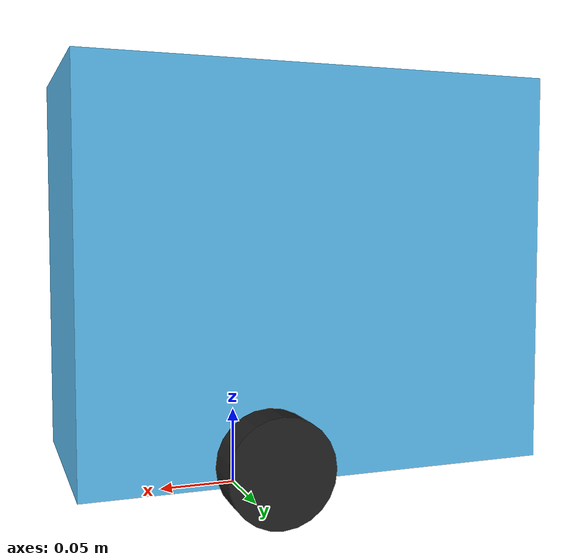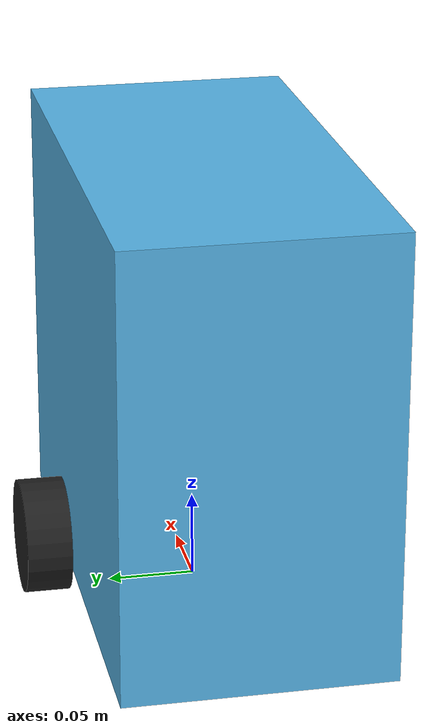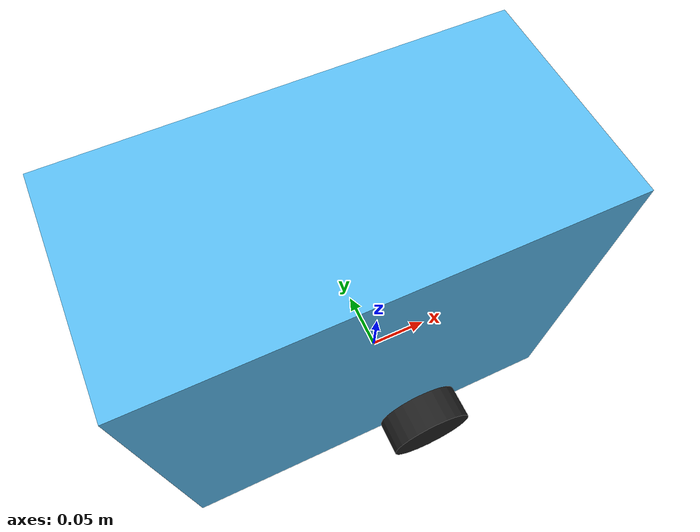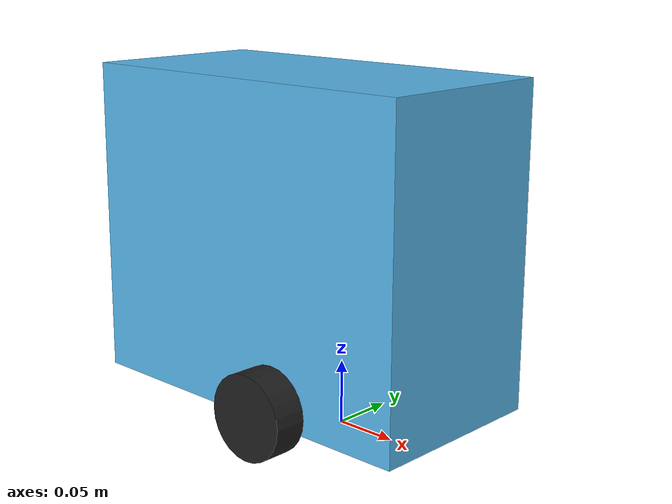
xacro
<?xml version="1.0" ?>
<robot name="dummy_robot" xmlns:xacro="http://ros.org/wiki/xacro">
  <xacro:include filename="$(find dummy_robot_description)/urdf/common_properties.xacro"/>
  <xacro:include filename="$(find dummy_robot_description)/urdf/dummy_robot.gazebo.xacro"/>

  <xacro:property name="CADscale" value="0.0012" />

<!-- ============ 'dummy_base_footprint' is the ground link ===================== -->
  <link name="dummy_base_footprint"/>

  <joint name="base_joint" type="fixed">
    <parent link="dummy_base_footprint"/>
    <child link="dummy_base_link"/>
    <!-- dummy_base_link is placed at the center of gravity of GoPiGo3 body -->
    <origin xyz="0 0 0.075" rpy="0 0 0"/>
  </joint>

<!-- ============ 'dummy_base_link' simulates GoPiGo3 body mass and moment of inertia
                   and act as the robot reference frame =================== -->
  <link name="dummy_base_link">
  <!-- **** 'dummy_base_link' COLLISION & INERTIA **** -->
    <collision>
      <origin xyz="-0.038 0 0.07" rpy="0 0 0"/>
      <geometry>
        <box size="0.245 0.15 0.25"/>
      </geometry>
    </collision>

    <inertial>
      <origin xyz="-0.02 0 0" rpy="0 0 0"/>
      <mass value="0.534"/>
      <inertia ixx="1.0e-03" ixy="0" ixz="0"
               iyy="1.0e-03" iyz="0"
               izz="2.45e-03" />
    </inertial>

    <visual>
      <origin xyz="-0.038 0 0.07" rpy="0 0 0"/>
      <geometry>
        <box size="0.3 0.15 0.25"/>
      </geometry>
    </visual>

  </link>

<!-- ============ wheel_left ====================== -->
  <joint name="wheel_left_joint" type="continuous">
    <parent link="dummy_base_link"/>
    <child link="wheel_left_link"/>
    <origin xyz="0 0.089 -0.042" rpy="0 0 1.57"/>
    <axis xyz="1 0 0"/>
  </joint>

  <link name="wheel_left_link">
    <visual>
      <origin xyz="0 0 0" rpy="0 1.57 0"/>
      <geometry>
        <cylinder length="0.026" radius="0.033"/>
      </geometry>
      <material name="black"/>
    </visual>

    <collision>
      <origin xyz="0 0 0" rpy="0 1.57 0"/>
      <geometry>
        <cylinder length="0.026" radius="0.033"/>
      </geometry>
    </collision>

    <inertial>
      <origin xyz="0 0 0" />
      <mass value="0.032" />
      <inertia ixx="1.74e-05" ixy="0" ixz="0"
               iyy="1.05e-05" iyz="0"
               izz="1.05e-05" />
    </inertial>
  </link>

<!-- ============ wheel_right ====================== -->
  <joint name="wheel_right_joint" type="continuous">
    <parent link="dummy_base_link"/>
    <child link="wheel_right_link"/>
    <origin xyz="0 -0.089 -0.042" rpy="0 0 -1.57"/>
    <axis xyz="-1 0 0"/>
  </joint>

  <link name="wheel_right_link">
    <visual>
      <origin xyz="0 0 0" rpy="0 1.57 0"/>
      <geometry>
        <cylinder length="0.026" radius="0.033"/>
      </geometry>
      <material name="black"/>
    </visual>

    <collision>
      <origin xyz="0 0 0" rpy="0 1.57 0"/>
      <geometry>
        <cylinder length="0.026" radius="0.033"/>
      </geometry>
    </collision>

    <inertial>
      <origin xyz="0 0 0" />
      <mass value="0.032" />
      <inertia ixx="1.74e-05" ixy="0" ixz="0"
               iyy="1.05e-05" iyz="0"
               izz="1.05e-05" />
    </inertial>
  </link>

<!-- ============ caster_back ====================== -->
  <joint name="caster_back_joint" type="fixed">
    <parent link="dummy_base_link"/>
    <child link="caster_back_link"/>
    <origin xyz="-0.132 0 -0.075" rpy="0 0 0"/>
  </joint>

  <link name="caster_back_link">
    <collision>
      <origin xyz="0 0 0.01" rpy="1.57 0 0"/>
      <geometry>
        <cylinder length="0.009" radius="0.01"/>
      </geometry>
    </collision>

    <visual>
      <origin xyz="0 0 0.01" rpy="1.57 0 0"/>
      <geometry>
        <cylinder length="0.009" radius="0.01"/>
      </geometry>
    </visual>

    <inertial>
      <origin xyz="0 0 0" />
      <mass value="0.005" />
      <inertia ixx="0.001" ixy="0.0" ixz="0.0"
               iyy="0.001" iyz="0.0"
               izz="0.001" />
    </inertial>
  </link>
</robot>
